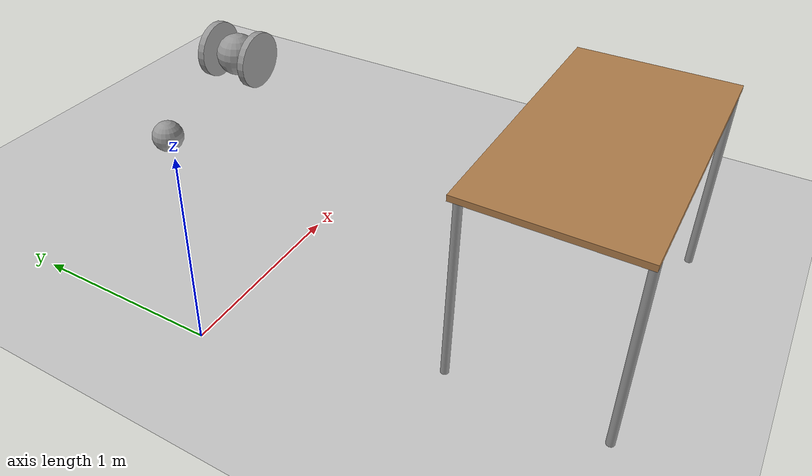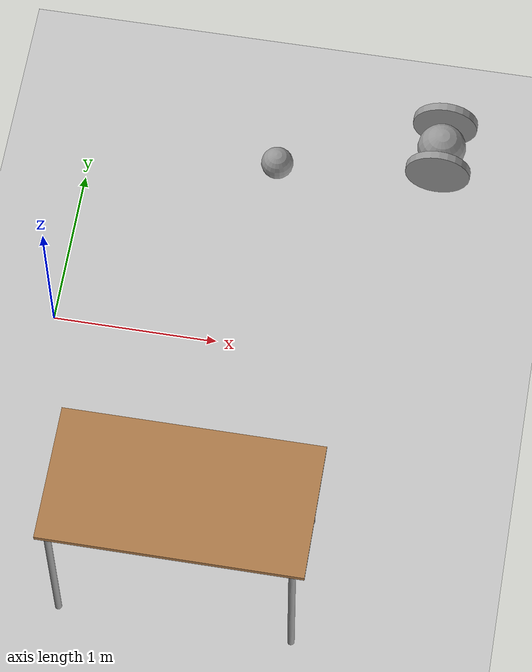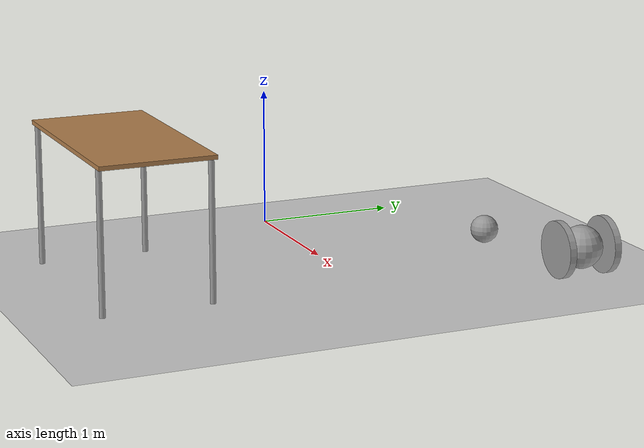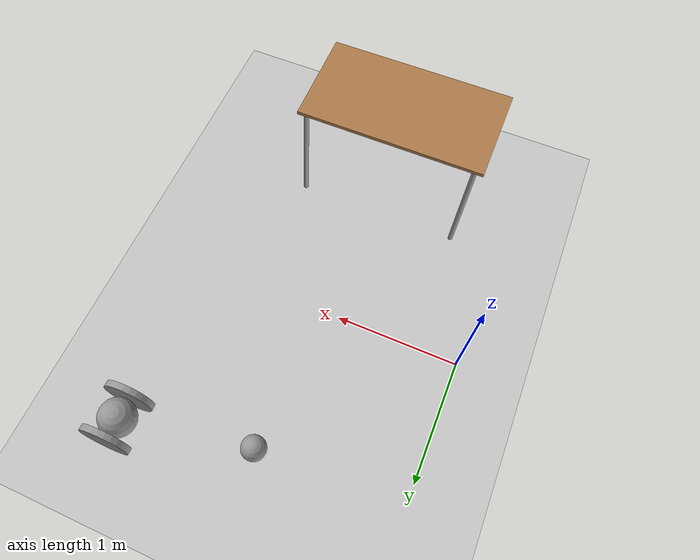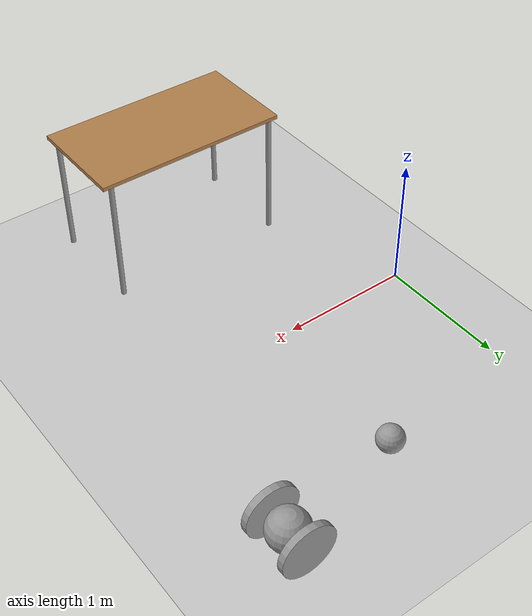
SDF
<sdf version="1.7">
 <world name="default">
  <model name="ground_plane">
   <static>1</static>
   <link name="link">
    <collision name="collision">
     <geometry><plane><normal>0 0 1</normal><size>100 100</size></plane></geometry>
     <surface><friction><ode><mu>100</mu><mu2>50</mu2></ode></friction></surface>
    </collision>
    <visual name="visual">
     <cast_shadows>0</cast_shadows>
     <geometry><plane><normal>0 0 1</normal><size>100 100</size></plane></geometry>
     <material>
      <script><uri>file://media/materials/scripts/gazebo.material</uri><name>Gazebo/Grey</name></script>
     </material>
    </visual>
   </link>
  </model>
  <model name="B8">
   <link name="link_4">
    <inertial>
     <mass>1</mass>
     <inertia><ixx>0.1</ixx><ixy>0</ixy><ixz>0</ixz><iyy>0.1</iyy><iyz>0</iyz><izz>0.1</izz></inertia>
    </inertial>
    <visual name="visual">
     <geometry><sphere><radius>0.15</radius></sphere></geometry>
     <material>
      <lighting>1</lighting>
      <script><uri>file://media/materials/scripts/gazebo.material</uri><name>Gazebo/Grey</name></script>
      <shader type="pixel"><normal_map>__default__</normal_map></shader>
      <ambient>0.3 0.3 0.3 1</ambient>
      <diffuse>0.7 0.7 0.7 1</diffuse>
      <specular>0.01 0.01 0.01 1</specular>
      <emissive>0 0 0 1</emissive>
     </material>
    </visual>
    <collision name="collision">
     <geometry><sphere><radius>0.15</radius></sphere></geometry>
     <surface>
      <friction>
       <ode><mu>1</mu><mu2>1</mu2><fdir1>0 0 0</fdir1><slip1>0</slip1><slip2>0</slip2></ode>
       <torsional>
        <coefficient>1</coefficient>
        <patch_radius>0</patch_radius>
        <surface_radius>0</surface_radius>
        <use_patch_radius>1</use_patch_radius>
        <ode><slip>0</slip></ode>
       </torsional>
      </friction>
      <bounce><restitution_coefficient>0</restitution_coefficient><threshold>1e+06</threshold></bounce>
      <contact>
       <collide_without_contact>0</collide_without_contact>
       <collide_without_contact_bitmask>1</collide_without_contact_bitmask>
       <collide_bitmask>1</collide_bitmask>
       <ode>
        <soft_cfm>0</soft_cfm>
        <soft_erp>0.2</soft_erp>
        <kp>1e+13</kp>
        <kd>1</kd>
        <max_vel>0.01</max_vel>
        <min_depth>0</min_depth>
       </ode>
       <bullet>
        <split_impulse>1</split_impulse>
        <split_impulse_penetration_threshold>-0.01</split_impulse_penetration_threshold>
        <soft_cfm>0</soft_cfm>
        <soft_erp>0.2</soft_erp>
        <kp>1e+13</kp>
        <kd>1</kd>
       </bullet>
      </contact>
     </surface>
    </collision>
   </link>
   <link name="link_5">
    <inertial>
     <mass>1</mass>
     <inertia><ixx>0.145833</ixx><ixy>0</ixy><ixz>0</ixz><iyy>0.145833</iyy><iyz>0</iyz><izz>0.125</izz></inertia>
    </inertial>
    <pose>0 -0.175001 0 1.5708 -0 0</pose>
    <visual name="visual">
     <geometry><cylinder><radius>0.2</radius><length>0.05</length></cylinder></geometry>
     <material>
      <lighting>1</lighting>
      <script><uri>file://media/materials/scripts/gazebo.material</uri><name>Gazebo/Grey</name></script>
      <shader type="pixel"><normal_map>__default__</normal_map></shader>
      <ambient>0.3 0.3 0.3 1</ambient>
      <diffuse>0.7 0.7 0.7 1</diffuse>
      <specular>0.01 0.01 0.01 1</specular>
      <emissive>0 0 0 1</emissive>
     </material>
    </visual>
    <collision name="collision">
     <geometry><cylinder><radius>0.2</radius><length>0.05</length></cylinder></geometry>
     <surface>
      <friction>
       <ode><mu>1</mu><mu2>1</mu2><fdir1>0 0 0</fdir1><slip1>0</slip1><slip2>0</slip2></ode>
       <torsional>
        <coefficient>1</coefficient>
        <patch_radius>0</patch_radius>
        <surface_radius>0</surface_radius>
        <use_patch_radius>1</use_patch_radius>
        <ode><slip>0</slip></ode>
       </torsional>
      </friction>
      <bounce><restitution_coefficient>0</restitution_coefficient><threshold>1e+06</threshold></bounce>
      <contact>
       <collide_without_contact>0</collide_without_contact>
       <collide_without_contact_bitmask>1</collide_without_contact_bitmask>
       <collide_bitmask>1</collide_bitmask>
       <ode>
        <soft_cfm>0</soft_cfm>
        <soft_erp>0.2</soft_erp>
        <kp>1e+13</kp>
        <kd>1</kd>
        <max_vel>0.01</max_vel>
        <min_depth>0</min_depth>
       </ode>
       <bullet>
        <split_impulse>1</split_impulse>
        <split_impulse_penetration_threshold>-0.01</split_impulse_penetration_threshold>
        <soft_cfm>0</soft_cfm>
        <soft_erp>0.2</soft_erp>
        <kp>1e+13</kp>
        <kd>1</kd>
       </bullet>
      </contact>
     </surface>
    </collision>
   </link>
   <link name="link_5_clone">
    <inertial>
     <mass>1</mass>
     <inertia><ixx>0.145833</ixx><ixy>0</ixy><ixz>0</ixz><iyy>0.145833</iyy><iyz>0</iyz><izz>0.125</izz></inertia>
    </inertial>
    <pose>0 0.175001 0 1.5708 -0 0</pose>
    <visual name="visual">
     <geometry><cylinder><radius>0.2</radius><length>0.05</length></cylinder></geometry>
     <material>
      <lighting>1</lighting>
      <script><uri>file://media/materials/scripts/gazebo.material</uri><name>Gazebo/Grey</name></script>
      <shader type="pixel"><normal_map>__default__</normal_map></shader>
      <ambient>0.3 0.3 0.3 1</ambient>
      <diffuse>0.7 0.7 0.7 1</diffuse>
      <specular>0.01 0.01 0.01 1</specular>
      <emissive>0 0 0 1</emissive>
     </material>
    </visual>
    <collision name="collision">
     <geometry><cylinder><radius>0.2</radius><length>0.05</length></cylinder></geometry>
     <surface>
      <friction>
       <ode><mu>1</mu><mu2>1</mu2><fdir1>0 0 0</fdir1><slip1>0</slip1><slip2>0</slip2></ode>
       <torsional>
        <coefficient>1</coefficient>
        <patch_radius>0</patch_radius>
        <surface_radius>0</surface_radius>
        <use_patch_radius>1</use_patch_radius>
        <ode><slip>0</slip></ode>
       </torsional>
      </friction>
      <bounce><restitution_coefficient>0</restitution_coefficient><threshold>1e+06</threshold></bounce>
      <contact>
       <collide_without_contact>0</collide_without_contact>
       <collide_without_contact_bitmask>1</collide_without_contact_bitmask>
       <collide_bitmask>1</collide_bitmask>
       <ode>
        <soft_cfm>0</soft_cfm>
        <soft_erp>0.2</soft_erp>
        <kp>1e+13</kp>
        <kd>1</kd>
        <max_vel>0.01</max_vel>
        <min_depth>0</min_depth>
       </ode>
       <bullet>
        <split_impulse>1</split_impulse>
        <split_impulse_penetration_threshold>-0.01</split_impulse_penetration_threshold>
        <soft_cfm>0</soft_cfm>
        <soft_erp>0.2</soft_erp>
        <kp>1e+13</kp>
        <kd>1</kd>
       </bullet>
      </contact>
     </surface>
    </collision>
   </link>
   <joint name="link_4_JOINT_21" type="revolute">
    <parent>link_4</parent>
    <child>link_5</child>
    <axis>
     <xyz>0 0 1</xyz>
     <limit>
      <lower>-1.79769e+308</lower>
      <upper>1.79769e+308</upper>
      <effort>-1</effort>
      <velocity>-1</velocity>
     </limit>
     <dynamics>
      <spring_reference>0</spring_reference>
      <spring_stiffness>0</spring_stiffness>
      <damping>0</damping>
     </dynamics>
    </axis>
    <physics>
     <ode><limit><cfm>0</cfm><erp>0.2</erp></limit><suspension><cfm>0</cfm><erp>0.2</erp></suspension></ode>
    </physics>
   </joint>
   <joint name="link_4_JOINT_22" type="revolute">
    <parent>link_4</parent>
    <child>link_5_clone</child>
    <axis>
     <xyz>0 0 1</xyz>
     <limit>
      <lower>-1.79769e+308</lower>
      <upper>1.79769e+308</upper>
      <effort>-1</effort>
      <velocity>-1</velocity>
     </limit>
     <dynamics>
      <spring_reference>0</spring_reference>
      <spring_stiffness>0</spring_stiffness>
      <damping>0</damping>
     </dynamics>
    </axis>
    <physics>
     <ode><limit><cfm>0</cfm><erp>0.2</erp></limit><suspension><cfm>0</cfm><erp>0.2</erp></suspension></ode>
    </physics>
   </joint>
   <static>0</static>
   <pose>2.16554 1.45526 0.199999 -6e-06 0 0</pose>
  </model>
  <model name="table">
   <static>1</static>
   <link name="link">
    <collision name="surface">
     <pose>0 0 1 0 -0 0</pose>
     <geometry><box><size>1.5 0.8 0.03</size></box></geometry>
     <surface><friction><ode><mu>0.6</mu><mu2>0.6</mu2></ode></friction></surface>
    </collision>
    <visual name="visual1">
     <pose>0 0 1 0 -0 0</pose>
     <geometry><box><size>1.5 0.8 0.03</size></box></geometry>
     <material>
      <script><uri>file://media/materials/scripts/gazebo.material</uri><name>Gazebo/Wood</name></script>
     </material>
    </visual>
    <collision name="front_left_leg">
     <pose>0.68 0.38 0.5 0 -0 0</pose>
     <geometry><cylinder><radius>0.02</radius><length>1</length></cylinder></geometry>
    </collision>
    <visual name="front_left_leg">
     <pose>0.68 0.38 0.5 0 -0 0</pose>
     <geometry><cylinder><radius>0.02</radius><length>1</length></cylinder></geometry>
     <material>
      <script><uri>file://media/materials/scripts/gazebo.material</uri><name>Gazebo/Grey</name></script>
     </material>
    </visual>
    <collision name="front_right_leg">
     <pose>0.68 -0.38 0.5 0 -0 0</pose>
     <geometry><cylinder><radius>0.02</radius><length>1</length></cylinder></geometry>
    </collision>
    <visual name="front_right_leg">
     <pose>0.68 -0.38 0.5 0 -0 0</pose>
     <geometry><cylinder><radius>0.02</radius><length>1</length></cylinder></geometry>
     <material>
      <script><uri>file://media/materials/scripts/gazebo.material</uri><name>Gazebo/Grey</name></script>
     </material>
    </visual>
    <collision name="back_right_leg">
     <pose>-0.68 -0.38 0.5 0 -0 0</pose>
     <geometry><cylinder><radius>0.02</radius><length>1</length></cylinder></geometry>
    </collision>
    <visual name="back_right_leg">
     <pose>-0.68 -0.38 0.5 0 -0 0</pose>
     <geometry><cylinder><radius>0.02</radius><length>1</length></cylinder></geometry>
     <material>
      <script><uri>file://media/materials/scripts/gazebo.material</uri><name>Gazebo/Grey</name></script>
     </material>
    </visual>
    <collision name="back_left_leg">
     <pose>-0.68 0.38 0.5 0 -0 0</pose>
     <geometry><cylinder><radius>0.02</radius><length>1</length></cylinder></geometry>
    </collision>
    <visual name="back_left_leg">
     <pose>-0.68 0.38 0.5 0 -0 0</pose>
     <geometry><cylinder><radius>0.02</radius><length>1</length></cylinder></geometry>
     <material>
      <script><uri>file://media/materials/scripts/gazebo.material</uri><name>Gazebo/Grey</name></script>
     </material>
    </visual>
   </link>
   <pose>1.07452 -1.46529 0 0 -0 0</pose>
  </model>
  <model name="my_ball">
   <link name="link">
    <inertial>
     <mass>1</mass>
     <inertia><ixx>0.1</ixx><ixy>0</ixy><ixz>0</ixz><iyy>0.1</iyy><iyz>0</iyz><izz>0.1</izz></inertia>
    </inertial>
    <visual name="visual">
     <geometry><sphere><radius>0.1</radius></sphere></geometry>
     <material>
      <script><name>Gazebo/Grey</name><uri>file://media/materials/scripts/gazebo.material</uri></script>
      <shader type="pixel"><normal_map>__default__</normal_map></shader>
      <ambient>0.3 0.3 0.3 1</ambient>
      <diffuse>0.7 0.7 0.7 1</diffuse>
      <specular>0.01 0.01 0.01 1</specular>
      <emissive>1 1 1 1</emissive>
     </material>
    </visual>
    <collision name="collision">
     <geometry><sphere><radius>0.1</radius></sphere></geometry>
     <surface>
      <friction>
       <ode><mu>1</mu><mu2>1</mu2><fdir1>0 0 0</fdir1><slip1>0</slip1><slip2>0</slip2></ode>
       <torsional>
        <coefficient>1</coefficient>
        <patch_radius>0</patch_radius>
        <surface_radius>0</surface_radius>
        <use_patch_radius>1</use_patch_radius>
        <ode><slip>0</slip></ode>
       </torsional>
      </friction>
      <bounce><restitution_coefficient>0</restitution_coefficient><threshold>1e+06</threshold></bounce>
      <contact>
       <collide_without_contact>0</collide_without_contact>
       <collide_without_contact_bitmask>1</collide_without_contact_bitmask>
       <collide_bitmask>1</collide_bitmask>
       <ode>
        <soft_cfm>0</soft_cfm>
        <soft_erp>0.2</soft_erp>
        <kp>1e+13</kp>
        <kd>1</kd>
        <max_vel>0.01</max_vel>
        <min_depth>0</min_depth>
       </ode>
       <bullet>
        <split_impulse>1</split_impulse>
        <split_impulse_penetration_threshold>-0.01</split_impulse_penetration_threshold>
        <soft_cfm>0</soft_cfm>
        <soft_erp>0.2</soft_erp>
        <kp>1e+13</kp>
        <kd>1</kd>
       </bullet>
      </contact>
     </surface>
    </collision>
   </link>
   <static>0</static>
   <pose>1.1702 1.24176 0.1 0 -0 0</pose>
  </model>
 </world>
</sdf>
